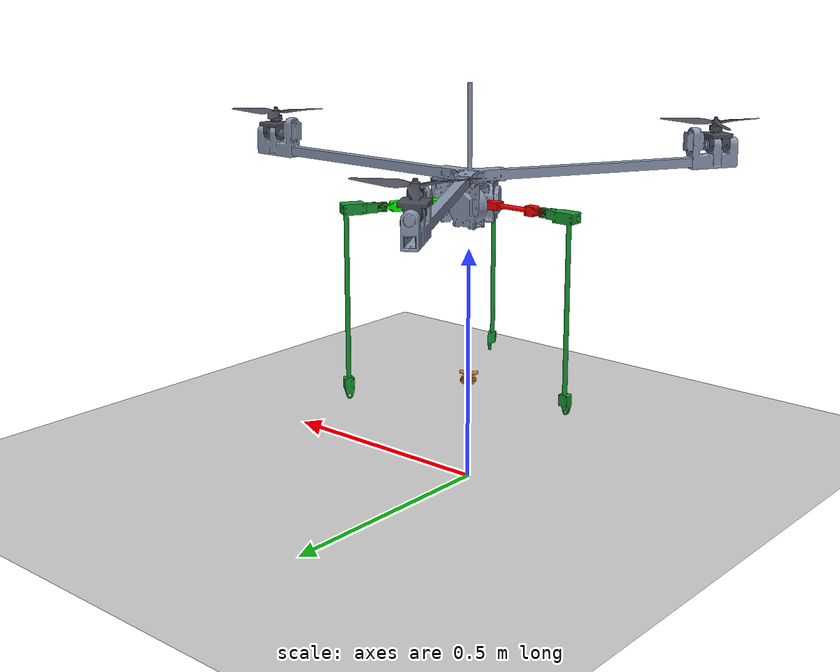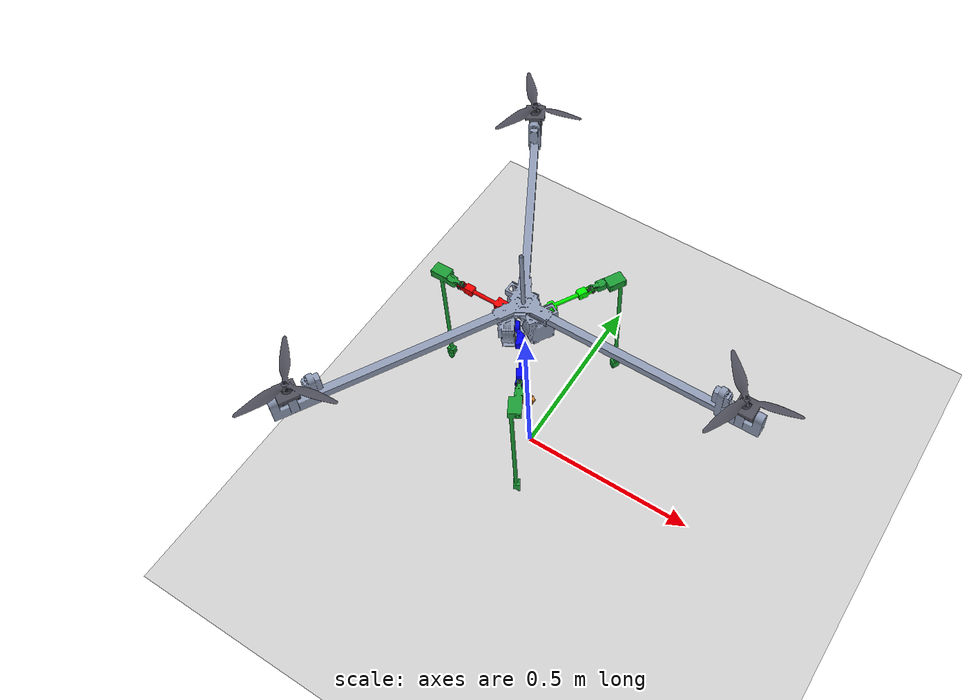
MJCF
<mujoco model="three_leg_3rsr_closed">
  <compiler angle="radian" meshdir="." autolimits="true"/>
  <option timestep="0.0005" gravity="0 0 -9.81" iterations="50" tolerance="1e-8"/>

  <asset>
    <mesh name="upperbody_mesh" file="upperbody_light.STL" scale="0.001 0.001 0.001"/>
    <mesh name="joint_mesh" file="joint.STL" scale="0.001 0.001 0.001"/>
    <mesh name="upperleg_mesh" file="upperleg.STL" scale="0.001 0.001 0.001"/>
    <mesh name="lowerleg_mesh" file="lowerleg.STL" scale="0.001 0.001 0.001"/>
    <mesh name="foot_mesh" file="footv5.STL" scale="0.001 0.001 0.001"/>
    <mesh name="propeller_mesh" file="propellerlink_light.STL" scale="0.001 0.001 0.001"/>
  </asset>

  <default>
    <joint armature="0.01" damping="0.05"/>
    <position kp="15" kv="3"/>
    <default class="legmesh">
      <geom contype="0" conaffinity="0"/>
    </default>
  </default>

  <worldbody>
    <light pos="0 0 2" dir="0 0 -1"/>
    <geom name="floor" type="plane" size="2 2 0.02" rgba="0.8 0.8 0.8 1"/>

    <body name="base" pos="0 0 0.6">
      <freejoint name="root"/>
      <!-- SIGMA Simulation.m total m=2.73 kg (was paper 3.75). Scaled in place:
           base 2.148 + 3 props 0.327 + legs 0.219 + foot 0.036. -->
      <geom name="upperbody_visual" type="mesh" mesh="upperbody_mesh" mass="2.148" rgba="0.55 0.6 0.7 1" contype="0" conaffinity="0"/>

      <site name="imu" pos="0 0 0" size="0.012" rgba="1 1 0 0"/>

      <!-- ===== LEG 1: 0 deg ===== -->
      <body name="leg1" quat="0 0 0 1">
        <body name="hip1" pos="0.02424 0 0">
          <body name="upper1" quat="0 0 0 1">
            <joint name="ctrl_joint_1" type="hinge" axis="0 1 0" range="-1.5708 1.0472" damping="0.05"/>
            <geom name="upper1_visual" class="legmesh" type="mesh" mesh="upperleg_mesh" mass="0.0365" pos="-0.158 0 0" quat="0.7071068 0.7071068 0 0" rgba="1 0 0 1"/>
            <body name="cross1" pos="-0.158 0 0">
              <joint name="cross_pin_1" type="hinge" axis="0 1 0" damping="0.01"/>
              <inertial pos="0 0 0" mass="0.0073" diaginertia="7.28e-7 7.28e-7 7.28e-7"/>
              <geom class="legmesh" type="mesh" mesh="joint_mesh" pos="0 0 0" rgba="0.25 0.25 0.25 1"/>
              <body name="lower1" pos="0 0 0">
              <joint name="lower_pin_1" type="hinge" axis="0 0 1" range="-0.7854 0.7854" damping="0.01"/>
              <geom class="legmesh" type="mesh" mesh="lowerleg_mesh" mass="0.0292" quat="0 0 1 0" rgba="0.1 0.6 0.2 1"/>
              <site name="foot_site_1" pos="-0.0735 0.0086 -0.396" size="0.012" rgba="1 0 0 0"/>
              </body>
            </body>
          </body>
        </body>
      </body>

      <!-- ===== LEG 2: 120 deg ===== -->
      <body name="leg2" quat="0.8660254 0 0 -0.5">
        <body name="hip2" pos="0.02424 0 0">
          <body name="upper2" quat="0 0 0 1">
            <joint name="ctrl_joint_2" type="hinge" axis="0 1 0" range="-1.5708 1.0472" damping="0.05"/>
            <geom name="upper2_visual" class="legmesh" type="mesh" mesh="upperleg_mesh" mass="0.0365" pos="-0.158 0 0" quat="0.7071068 0.7071068 0 0" rgba="0 0 1 1"/>
            <body name="cross2" pos="-0.158 0 0">
              <joint name="cross_pin_2" type="hinge" axis="0 1 0" damping="0.01"/>
              <inertial pos="0 0 0" mass="0.0073" diaginertia="7.28e-7 7.28e-7 7.28e-7"/>
              <geom class="legmesh" type="mesh" mesh="joint_mesh" pos="0 0 0" rgba="0.25 0.25 0.25 1"/>
              <body name="lower2" pos="0 0 0">
              <joint name="lower_pin_2" type="hinge" axis="0 0 1" range="-0.7854 0.7854" damping="0.01"/>
              <geom class="legmesh" type="mesh" mesh="lowerleg_mesh" mass="0.0292" quat="0 0 1 0" rgba="0.1 0.6 0.2 1"/>
              <site name="foot_site_2" pos="-0.0735 0.0086 -0.396" size="0.012" rgba="0 1 0 0"/>
              </body>
            </body>
          </body>
        </body>
      </body>

      <!-- ===== LEG 3: 240 deg ===== -->
      <body name="leg3" quat="0.8660254 0 0 0.5">
        <body name="hip3" pos="0.02424 0 0">
          <body name="upper3" quat="0 0 0 1">
            <joint name="ctrl_joint_3" type="hinge" axis="0 1 0" range="-1.5708 1.0472" damping="0.05"/>
            <geom name="upper3_visual" class="legmesh" type="mesh" mesh="upperleg_mesh" mass="0.0365" pos="-0.158 0 0" quat="0.7071068 0.7071068 0 0" rgba="0 1 0 1"/>
            <body name="cross3" pos="-0.158 0 0">
              <joint name="cross_pin_3" type="hinge" axis="0 1 0" damping="0.01"/>
              <inertial pos="0 0 0" mass="0.0073" diaginertia="7.28e-7 7.28e-7 7.28e-7"/>
              <geom class="legmesh" type="mesh" mesh="joint_mesh" pos="0 0 0" rgba="0.25 0.25 0.25 1"/>
              <body name="lower3" pos="0 0 0">
              <joint name="lower_pin_3" type="hinge" axis="0 0 1" range="-0.7854 0.7854" damping="0.01"/>
              <geom class="legmesh" type="mesh" mesh="lowerleg_mesh" mass="0.0292" quat="0 0 1 0" rgba="0.1 0.6 0.2 1"/>
              <site name="foot_site_3" pos="-0.0735 0.0086 -0.396" size="0.012" rgba="0 0 1 0"/>
              </body>
            </body>
          </body>
        </body>
      </body>

      <!-- ===== TRI-ROTOR PROPELLERS (servo tilt about prop Z = outward, X = up) ===== -->
      <body name="proparm1" quat="1 0 0 0">
        <body name="prop1" pos="0.56705 0 0.0866" quat="0 0.7071068 0 0.7071068">
          <joint name="servo_1" type="hinge" axis="0 0 1" range="-1.5708 1.5708" damping="0.2"/>
          <site name="thrust_site_1" pos="0 0 0" size="0.012" rgba="1 0.5 0 0"/>
          <inertial pos="0 0 0" mass="0.109" diaginertia="1.456e-4 1.456e-4 1.456e-4"/>
          <geom type="mesh" mesh="propeller_mesh" rgba="0.3 0.3 0.35 1" contype="0" conaffinity="0"/>
          <!-- prop frame: X red(up), Y green, Z blue(outward) -->
        </body>
      </body>
      <body name="proparm2" quat="0.5 0 0 0.8660254">
        <body name="prop2" pos="0.56705 0 0.0866" quat="0 0.7071068 0 0.7071068">
          <joint name="servo_2" type="hinge" axis="0 0 1" range="-1.5708 1.5708" damping="0.2"/>
          <site name="thrust_site_2" pos="0 0 0" size="0.012" rgba="1 0.5 0 0"/>
          <inertial pos="0 0 0" mass="0.109" diaginertia="1.456e-4 1.456e-4 1.456e-4"/>
          <geom type="mesh" mesh="propeller_mesh" rgba="0.3 0.3 0.35 1" contype="0" conaffinity="0"/>
        </body>
      </body>
      <body name="proparm3" quat="-0.5 0 0 0.8660254">
        <body name="prop3" pos="0.56705 0 0.0866" quat="0 0.7071068 0 0.7071068">
          <joint name="servo_3" type="hinge" axis="0 0 1" range="-1.5708 1.5708" damping="0.2"/>
          <site name="thrust_site_3" pos="0 0 0" size="0.012" rgba="1 0.5 0 0"/>
          <inertial pos="0 0 0" mass="0.109" diaginertia="1.456e-4 1.456e-4 1.456e-4"/>
          <geom type="mesh" mesh="propeller_mesh" rgba="0.3 0.3 0.35 1" contype="0" conaffinity="0"/>
        </body>
      </body>
    </body>

    <!-- shared foot point: free body pulled to the three leg ends -->
    <body name="foot" pos="0 0 0.231055">
      <freejoint name="foot_free"/>
      <inertial pos="0 0 0" mass="0.036" diaginertia="7.28e-6 7.28e-6 7.28e-6"/>
      <geom name="foot_visual" type="mesh" mesh="foot_mesh" rgba="0.8 0.5 0.2 1" contype="0" conaffinity="0"/>
      <geom name="foot_collision" type="sphere" size="0.025" pos="0 0 -0.012" rgba="0.8 0.5 0.2 0"/>
      <site name="foot_touch" pos="0 0 -0.012" size="0.03" rgba="1 1 1 0"/>
      <site name="foot_center" pos="0 0 0" size="0.01" rgba="1 1 1 0"/>
      <!-- foot end frame: origin yellow, X red, Y green, Z blue -->
    </body>
  </worldbody>

  <equality>
    <connect site1="foot_center" site2="foot_site_1" solref="0.002 1" solimp="0.99 0.999 1e-4 0.5 2"/>
    <connect site1="foot_center" site2="foot_site_2" solref="0.002 1" solimp="0.99 0.999 1e-4 0.5 2"/>
    <connect site1="foot_center" site2="foot_site_3" solref="0.002 1" solimp="0.99 0.999 1e-4 0.5 2"/>
  </equality>

  <actuator>
    <!-- hip motors: torque clamped to +-25 Nm (user-confirmed; real logs command up
         to 18.4 Nm). Kp/Kd are firmware-settable in MIT mode. -->
    <position name="ctrl_motor_1" joint="ctrl_joint_1" kp="100" kv="3" forcerange="-25 25" ctrlrange="-1.5708 1.0472"/>
    <position name="ctrl_motor_2" joint="ctrl_joint_2" kp="100" kv="3" forcerange="-25 25" ctrlrange="-1.5708 1.0472"/>
    <position name="ctrl_motor_3" joint="ctrl_joint_3" kp="100" kv="3" forcerange="-25 25" ctrlrange="-1.5708 1.0472"/>
    <position name="servo_motor_1" joint="servo_1" ctrlrange="-1.5708 1.5708"/>
    <position name="servo_motor_2" joint="servo_2" ctrlrange="-1.5708 1.5708"/>
    <position name="servo_motor_3" joint="servo_3" ctrlrange="-1.5708 1.5708"/>
    <!-- thrust ctrl 0-10 N/prop = 10s burst ceiling (F40 Pro V KV1950 6S, 55.5A peak);
         continuous safe ~6 N/prop (THRUST_MAX in train_hop). TWR 0.82 burst, ~0.5 cont. -->
    <general name="thrust_1" site="thrust_site_1" gear="1 0 0  0.018 0 0" gainprm="1 0 0" ctrlrange="0 10"/>
    <general name="thrust_2" site="thrust_site_2" gear="1 0 0  0.018 0 0" gainprm="1 0 0" ctrlrange="0 10"/>
    <general name="thrust_3" site="thrust_site_3" gear="1 0 0 -0.018 0 0" gainprm="1 0 0" ctrlrange="0 10"/>
  </actuator>

  <sensor>
    <accelerometer name="imu_accel" site="imu"/>
    <gyro name="imu_gyro" site="imu"/>
    <framequat name="imu_quat" objtype="site" objname="imu"/>
    <framepos name="base_pos" objtype="site" objname="imu"/>
    <framelinvel name="base_linvel" objtype="site" objname="imu"/>
    <jointpos name="hip1_pos" joint="ctrl_joint_1"/>
    <jointpos name="hip2_pos" joint="ctrl_joint_2"/>
    <jointpos name="hip3_pos" joint="ctrl_joint_3"/>
    <jointvel name="hip1_vel" joint="ctrl_joint_1"/>
    <jointvel name="hip2_vel" joint="ctrl_joint_2"/>
    <jointvel name="hip3_vel" joint="ctrl_joint_3"/>
    <jointpos name="servo1_pos" joint="servo_1"/>
    <jointpos name="servo2_pos" joint="servo_2"/>
    <jointpos name="servo3_pos" joint="servo_3"/>
    <touch name="foot_touch_sensor" site="foot_touch"/>
  </sensor>

  <!-- converged feasible stance: base(7) + 3x[hip,cross,lower](9) + 3 servo(3) + foot(7) = 26 -->
  <keyframe>
    <key name="home"
         qpos="0 0 0.6 1 0 0 0
               -0.060299 -0.593065 0.116478
               -0.060299 -0.593065 0.116478
               -0.060299 -0.593065 0.116478
               0 0 0
               0 0 0.231055 1 0 0 0"
         ctrl="-0.060299 -0.060299 -0.060299 0 0 0 0 0 0"/>
  </keyframe>
</mujoco>
